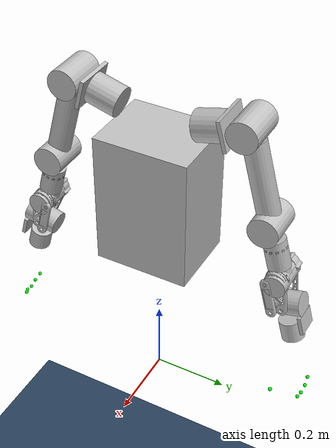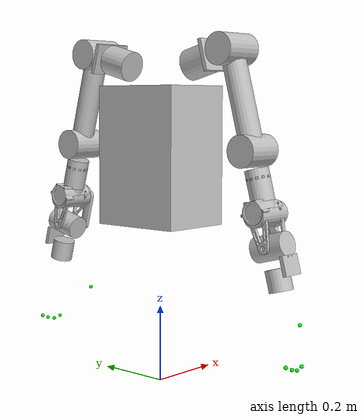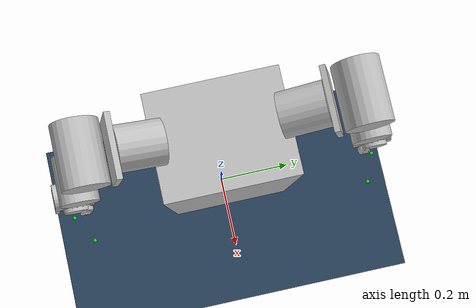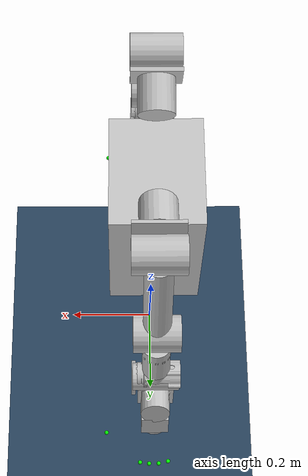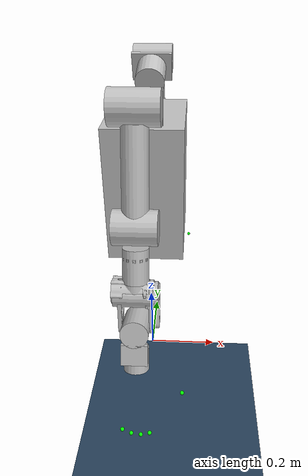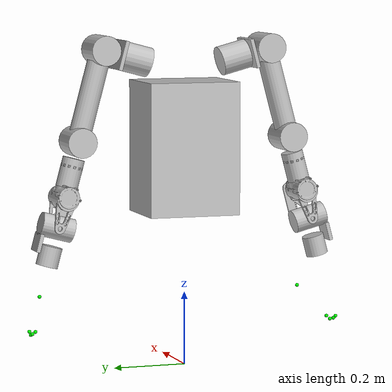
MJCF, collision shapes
<mujoco model="dual_arm_description">
  <compiler angle="radian" meshdir="meshes/"/>
  <default>
<joint damping="0.1" frictionloss="0.02" armature="0.01"/>
</default>
  <asset>
    <texture type="skybox" builtin="gradient" rgb1=".3 .5 .7" rgb2="0 0 0" width="32" height="512"/>
    <texture name="body" type="cube" builtin="flat" mark="cross" width="128" height="128" rgb1="0.8 0.6 0.4" rgb2="0.8 0.6 0.4" markrgb="1 1 1" random="0.01"/>
    <material name="body" texture="body" texuniform="true" rgba="0.8 0.6 .4 1"/>
    <texture name="grid" type="2d" builtin="checker" width="512" height="512" rgb1=".1 .2 .3" rgb2=".2 .3 .4"/>
    <material name="grid" texture="grid" texrepeat="1 1" texuniform="true" reflectance=".2"/>
    <mesh name="waist_link2" file="waist_link2.STL"/>
    <mesh name="pelvis" file="pelvis.STL"/>
    <mesh name="l_link0" file="l_link0.STL"/>
    <mesh name="l_link1" file="l_link1.STL"/>
    <mesh name="l_link2" file="l_link2.STL"/>
    <mesh name="l_link3" file="l_link3.STL"/>
    <mesh name="l_link4" file="l_link4.STL"/>
    <mesh name="l_link5" file="l_link5.STL"/>
    <mesh name="l_link6" file="l_link6.STL"/>
    <mesh name="l_link7" file="l_link7.STL"/>
    <mesh name="r_link0" file="r_link0.STL"/>
    <mesh name="r_link1" file="r_link1.STL"/>
    <mesh name="r_link2" file="r_link2.STL"/>
    <mesh name="r_link3" file="r_link3.STL"/>
    <mesh name="r_link4" file="r_link4.STL"/>
    <mesh name="r_link5" file="r_link5.STL"/>
    <mesh name="r_link6" file="r_link6.STL"/>
    <mesh name="r_link7" file="r_link7.STL"/>
    <mesh name="L_hand_base_link" file="L_hand_base_link.STL"/>
    <mesh name="Link11_L" file="Link11_L.STL"/>
    <mesh name="Link12_L" file="Link12_L.STL"/>
    <mesh name="Link13_L" file="Link13_L.STL"/>
    <mesh name="Link14_L" file="Link14_L.STL"/>
    <mesh name="Link15_L" file="Link15_L.STL"/>
    <mesh name="Link16_L" file="Link16_L.STL"/>
    <mesh name="Link17_L" file="Link17_L.STL"/>
    <mesh name="Link18_L" file="Link18_L.STL"/>
    <mesh name="Link19_L" file="Link19_L.STL"/>
    <mesh name="Link20_L" file="Link20_L.STL"/>
    <mesh name="Link21_L" file="Link21_L.STL"/>
    <mesh name="Link22_L" file="Link22_L.STL"/>
    <mesh name="R_hand_base_link" file="R_hand_base_link.STL"/>
    <mesh name="Link11_R" file="Link11_R.STL"/>
    <mesh name="Link12_R" file="Link12_R.STL"/>
    <mesh name="Link13_R" file="Link13_R.STL"/>
    <mesh name="Link14_R" file="Link14_R.STL"/>
    <mesh name="Link15_R" file="Link15_R.STL"/>
    <mesh name="Link16_R" file="Link16_R.STL"/>
    <mesh name="Link17_R" file="Link17_R.STL"/>
    <mesh name="Link18_R" file="Link18_R.STL"/>
    <mesh name="Link19_R" file="Link19_R.STL"/>
    <mesh name="Link20_R" file="Link20_R.STL"/>
    <mesh name="Link21_R" file="Link21_R.STL"/>
    <mesh name="Link22_R" file="Link22_R.STL"/>
  </asset>
  <worldbody>
    <light directional="true" diffuse=".4 .4 .4" specular="0.1 0.1 0.1" pos="0 0 5.0" dir="0 0 -1" castshadow="false"/>
    <light directional="true" diffuse=".6 .6 .6" specular="0.2 0.2 0.2" pos="0 0 4" dir="0 0 -1"/>
    <geom name="floor" size="0 0 .05" type="plane" material="grid" condim="3" pos="0 0 -0.64"/>
    <geom pos="0 0 0.494" type="mesh" contype="0" conaffinity="0" group="1" density="0" rgba="0.752941 0.752941 0.752941 1" mesh="pelvis"/>
    <body name="waist_Z_link" pos="0 0 0.4185">
      <inertial pos="-0.018779 -0.000457 0.246485" quat="0.999923 -0.0020141 -0.0119165 -0.00266278" mass="1" diaginertia="0.243009 0.228997 0.0758896"/>
      <joint name="waist_Z_joint" pos="0 0 0" axis="0 0 1" type="slide" limited="true" range="-0.15 0" damping="1" frictionloss="1"/>
      <geom size="0.05 0.005" type="cylinder" contype="0" conaffinity="0" group="1" density="0" rgba="0 0 1 1"/>
      <body name="waist_roll_link">
        <inertial pos="-0.018779 -0.000457 0.246485" quat="0.999923 -0.0020141 -0.0119165 -0.00266278" mass="0.0002" diaginertia="0.486018 0.457994 0.151779"/>
        <joint name="waist_roll_joint" pos="0 0 0" axis="1 0 0" limited="true" range="-0.25 0.25" damping="0.1" frictionloss="0.1"/>
        <geom size="0.05 0.005" type="cylinder" contype="0" conaffinity="0" group="1" density="0" rgba="0 1 0 1"/>
        <geom size="0.05 0.005" type="cylinder" contype="0" conaffinity="0" group="1" density="0" rgba="1 0 0 1"/>
        <body name="waist_link">
          <inertial pos="-0.0138181 -0.00161712 0.281568" quat="0.999936 0.0106773 0.00357206 -0.00106707" mass="17.7464" diaginertia="0.469112 0.405083 0.144421"/>
          <joint name="waist_yaw_joint" pos="0 0 0" axis="0 0 1" limited="true" range="-1 1" damping="0.5" frictionloss="0.5"/>
          <geom type="mesh" contype="0" conaffinity="0" group="1" density="0" rgba="0.752941 0.752941 0.752941 1" mesh="waist_link2"/>
          <geom size="0.1 0.125 0.18" pos="0 0 0.18" type="box" rgba="0.752941 0.752941 0.752941 1"/>
          <geom pos="0 0.15911 0.42582" quat="0.561136 -0.430264 0.430264 0.561135" type="mesh" contype="0" conaffinity="0" group="1" density="0" rgba="0.752941 0.752941 0.752941 1" mesh="l_link0"/>
          <geom size="0.04 0.04" pos="-5.17541e-10 0.139795 0.42063" quat="0.561136 -0.430264 0.430264 0.561135" type="cylinder" rgba="0.752941 0.752941 0.752941 1"/>
          <geom pos="0 -0.15911 0.42582" quat="0.561136 0.430264 0.430264 -0.561135" type="mesh" contype="0" conaffinity="0" group="1" density="0" rgba="0.752941 0.752941 0.752941 1" mesh="r_link0"/>
          <geom size="0.04 0.04" pos="-5.17541e-10 -0.139795 0.42063" quat="0.561136 0.430264 0.430264 -0.561135" type="cylinder" rgba="0.752941 0.752941 0.752941 1"/>
          <body name="left_link1" pos="1.98477e-09 0.233183 0.445723" quat="0.561136 -0.430264 0.430264 0.561135">
            <inertial pos="0 0.000725 -0.029524" quat="0.637041 0.77083 0 0" mass="0.222" diaginertia="0.000545 0.000513631 0.000270369"/>
            <joint name="left_joint1" pos="0 0 0" axis="0 0 1" limited="true" range="-3.14159 0.785398"/>
            <geom type="mesh" contype="0" conaffinity="0" group="1" density="0" rgba="0.752941 0.752941 0.752941 1" mesh="l_link1"/>
            <geom size="0.04 0.055 0.005" pos="0 0 -0.05" type="box" rgba="0.752941 0.752941 0.752941 1"/>
            <body name="left_link2" quat="0.5 0.5 -0.5 0.5">
              <inertial pos="0 -0.000473 0.006864" quat="0.999978 -0.00657738 0 0" mass="1.226" diaginertia="0.001198 0.00118004 0.000951961"/>
              <joint name="left_joint2" pos="0 0 0" axis="0 0 1" limited="true" range="-0.174 1.74533"/>
              <geom type="mesh" contype="0" conaffinity="0" group="1" density="0" rgba="0.75294 0.75294 0.75294 1" mesh="l_link2"/>
              <geom size="0.04 0.055" type="cylinder" rgba="0.75294 0.75294 0.75294 1"/>
              <body name="left_link3" pos="0 -0.253 0" quat="0.707107 0.707107 0 0">
                <inertial pos="0.000247 0.003673 -0.081504" quat="0.999747 -0.0215591 0.000754078 0.00640175" mass="1.824" diaginertia="0.0142071 0.0139976 0.00129937"/>
                <joint name="left_joint3" pos="0 0 0" axis="0 0 1" limited="true" range="-2.26893 2.26893"/>
                <geom type="mesh" contype="0" conaffinity="0" group="1" density="0" rgba="0.752941 0.752941 0.752941 1" mesh="l_link3"/>
                <geom size="0.03 0.11" pos="0 0 -0.11" type="cylinder" rgba="0.752941 0.752941 0.752941 1"/>
                <body name="left_link4" quat="0.707107 -0.707107 0 0">
                  <inertial pos="0.002765 -0.020714 0.006089" quat="0.997296 -0.0356336 -0.00751368 0.0638332" mass="0.123" diaginertia="0.000241537 0.000210924 0.000124539"/>
                  <joint name="left_joint4" pos="0 0 0" axis="0 0 1" limited="true" range="-2.26893 0"/>
                  <geom type="mesh" contype="0" conaffinity="0" group="1" density="0" rgba="0.75294 0.75294 0.75294 1" mesh="l_link4"/>
                  <geom size="0.04 0.05" type="cylinder" rgba="0.75294 0.75294 0.75294 1"/>
                  <body name="left_link5" pos="0 -0.2355 0" quat="0.707107 0.707107 0 0">
                    <inertial pos="0.000563 0.005092 -0.108798" quat="0.993172 -0.074755 0.0157112 0.088174" mass="1.01" diaginertia="0.00229232 0.00210921 0.000593467"/>
                    <joint name="left_joint5" pos="0 0 0" axis="0 0 1" limited="true" range="-2.26893 2.26893"/>
                    <geom type="mesh" contype="0" conaffinity="0" group="1" density="0" rgba="0.752941 0.752941 0.752941 1" mesh="l_link5"/>
                    <geom type="mesh" rgba="0.752941 0.752941 0.752941 1" mesh="l_link5"/>
                    <geom size="0.03 0.04" pos="0 0 -0.15" type="cylinder" rgba="0.752941 0.752941 0.752941 1"/>
                    <geom size="0.03 0.05" pos="0 0 -0.08" quat="0.707107 0.707107 0 0" type="cylinder" rgba="0.752941 0.752941 0.752941 1"/>
                    <body name="left_link6" quat="0.5 -0.5 -0.5 -0.5">
                      <inertial pos="0 -0.005048 0.000947" quat="0.609644 0.792675 0 0" mass="0.487" diaginertia="0.00027 0.000253187 0.000204813"/>
                      <joint name="left_joint6" pos="0 0 0" axis="0 0 1" limited="true" range="-0.645772 0.645772"/>
                      <geom type="mesh" contype="0" conaffinity="0" group="1" density="0" rgba="0.75294 0.75294 0.75294 1" mesh="l_link6"/>
                      <geom size="0.032 0.045" quat="0.707107 0.707107 0 0" type="cylinder" rgba="0.75294 0.75294 0.75294 1"/>
                      <body name="left_link7" quat="0.5 -0.5 0.5 0.5">
                        <inertial pos="-0.00169734 -0.113905 -0.010146" quat="0.483848 0.405133 -0.515405 0.579755" mass="0.419797" diaginertia="0.00196097 0.00183188 0.000345827"/>
                        <joint name="left_joint7" pos="0 0 0" axis="0 0 1" limited="true" range="-0.645772 0.645772"/>
                        <geom type="mesh" contype="0" conaffinity="0" group="1" density="0" rgba="0.75294 0.75294 0.75294 1" mesh="l_link7"/>
                        <geom size="0.03 0.025 0.005" pos="0 -0.05 0.04" type="box" rgba="0.75294 0.75294 0.75294 1"/>
                        <geom size="0.03 0.0275" pos="0 -0.08 0" quat="0.707107 0.707107 0 0" type="cylinder" rgba="0.75294 0.75294 0.75294 1"/>
                        <geom pos="0 -0.084 0" quat="0.707107 0 -0.707107 0" type="mesh" contype="0" conaffinity="0" group="1" density="0" rgba="0.1 0.1 0.1 1" mesh="L_hand_base_link"/>
                        <geom pos="-0.02045 -0.1531 -0.01696" quat="-1.29867e-06 -1.29868e-06 -0.707105 0.707108" type="mesh" contype="0" conaffinity="0" group="1" density="0" rgba="0.1 0.1 0.1 1" mesh="Link11_L"/>
                        <geom pos="-0.0304367 -0.1442 -0.0267843" quat="-0.0845956 3.1073e-07 -0.996415 0" type="mesh" contype="0" conaffinity="0" group="1" density="0" rgba="0.1 0.1 0.1 1" mesh="Link12_L"/>
                        <geom pos="-0.0740107 -0.178753 -0.0334252" quat="-0.0845956 3.1073e-07 -0.996415 0" type="mesh" contype="0" conaffinity="0" group="1" density="0" rgba="0.1 0.1 0.1 1" mesh="Link13_L"/>
                        <geom pos="-0.0941712 -0.188909 -0.0356559" quat="-0.0845956 3.1073e-07 -0.996415 0" type="mesh" contype="0" conaffinity="0" group="1" density="0" rgba="0.1 0.1 0.1 1" mesh="Link14_L"/>
                        <geom size="0.005" pos="-0.109631 -0.201909 -0.0342419" quat="-0.0845956 3.1073e-07 -0.996415 0" contype="0" conaffinity="0" group="1" density="0" rgba="0 1 0 1"/>
                        <geom pos="-0.032268 -0.22053 0.00028533" quat="0.706999 -0.0123409 -0.706999 -0.0123409" type="mesh" contype="0" conaffinity="0" group="1" density="0" rgba="0.1 0.1 0.1 1" mesh="Link15_L"/>
                        <geom pos="-0.0323868 -0.252586 -0.00213757" quat="0.706999 -0.0123409 -0.706999 -0.0123409" type="mesh" contype="0" conaffinity="0" group="1" density="0" rgba="0.1 0.1 0.1 1" mesh="Link16_L"/>
                        <geom size="0.005" pos="-0.0297853 -0.292702 -0.00713757" quat="0.706999 -0.0123409 -0.706999 -0.0123409" contype="0" conaffinity="0" group="1" density="0" rgba="0 1 0 1"/>
                        <geom pos="-0.01295 -0.2211 0.00028533" quat="0.707107 0 -0.707107 0" type="mesh" contype="0" conaffinity="0" group="1" density="0" rgba="0.1 0.1 0.1 1" mesh="Link17_L"/>
                        <geom pos="-0.01195 -0.253141 -0.00213757" quat="0.707107 0 -0.707107 0" type="mesh" contype="0" conaffinity="0" group="1" density="0" rgba="0.1 0.1 0.1 1" mesh="Link18_L"/>
                        <geom size="0.005" pos="-0.00795 -0.298141 -0.00713757" quat="0.707107 0 -0.707107 0" contype="0" conaffinity="0" group="1" density="0" rgba="0 1 0 1"/>
                        <geom pos="0.0062872 -0.22091 0.00028533" quat="0.706864 0.0185099 -0.706864 0.0185099" type="mesh" contype="0" conaffinity="0" group="1" density="0" rgba="0.1 0.1 0.1 1" mesh="Link19_L"/>
                        <geom pos="0.00896273 -0.252855 -0.00213757" quat="0.706864 0.0185099 -0.706864 0.0185099" type="mesh" contype="0" conaffinity="0" group="1" density="0" rgba="0.1 0.1 0.1 1" mesh="Link20_L"/>
                        <geom size="0.005" pos="0.0150507 -0.292591 -0.00413757" quat="0.706864 0.0185099 -0.706864 0.0185099" contype="0" conaffinity="0" group="1" density="0" rgba="0 1 0 1"/>
                        <geom pos="0.025488 -0.21971 0.00028533" quat="0.706138 0.0370072 -0.706138 0.0370072" type="mesh" contype="0" conaffinity="0" group="1" density="0" rgba="0.1 0.1 0.1 1" mesh="Link21_L"/>
                        <geom pos="0.0298317 -0.251471 -0.00213757" quat="0.706138 0.0370072 -0.706138 0.0370072" type="mesh" contype="0" conaffinity="0" group="1" density="0" rgba="0.1 0.1 0.1 1" mesh="Link22_L"/>
                        <geom size="0.005" pos="0.0371547 -0.282878 -0.00413757" quat="0.706138 0.0370072 -0.706138 0.0370072" contype="0" conaffinity="0" group="1" density="0" rgba="0 1 0 1"/>
                      </body>
                    </body>
                  </body>
                </body>
              </body>
            </body>
          </body>
          <body name="right_link1" pos="1.98477e-09 -0.233183 0.445723" quat="0.561136 0.430264 0.430264 -0.561135">
            <inertial pos="0 -0.000725 -0.029524" quat="0.77083 0.637041 0 0" mass="0.222" diaginertia="0.000545 0.000513631 0.000270369"/>
            <joint name="right_joint1" pos="0 0 0" axis="0 0 1" limited="true" range="-0.785398 3.14159"/>
            <geom type="mesh" contype="0" conaffinity="0" group="1" density="0" rgba="0.752941 0.752941 0.752941 1" mesh="r_link1"/>
            <geom size="0.04 0.055 0.005" pos="0 0 -0.05" type="box" rgba="0.752941 0.752941 0.752941 1"/>
            <body name="right_link2" quat="0.5 -0.5 -0.5 -0.5">
              <inertial pos="0 0.000473 0.006864" quat="0.999978 0.00657738 0 0" mass="1.226" diaginertia="0.001198 0.00118004 0.000951961"/>
              <joint name="right_joint2" pos="0 0 0" axis="0 0 1" limited="true" range="-1.74533 0.174"/>
              <geom type="mesh" contype="0" conaffinity="0" group="1" density="0" rgba="0.75294 0.75294 0.75294 1" mesh="r_link2"/>
              <geom size="0.04 0.055" type="cylinder" rgba="0.75294 0.75294 0.75294 1"/>
              <body name="right_link3" pos="0 0.253 0" quat="0.707107 -0.707107 0 0">
                <inertial pos="0.000247 -0.003673 -0.081504" quat="0.999747 0.0215591 0.000754078 -0.00640175" mass="1.824" diaginertia="0.0142071 0.0139976 0.00129937"/>
                <joint name="right_joint3" pos="0 0 0" axis="0 0 1" limited="true" range="-2.26893 2.26893"/>
                <geom type="mesh" contype="0" conaffinity="0" group="1" density="0" rgba="0.752941 0.752941 0.752941 1" mesh="r_link3"/>
                <geom size="0.03 0.11" pos="0 0 -0.11" type="cylinder" rgba="0.752941 0.752941 0.752941 1"/>
                <body name="right_link4" quat="0.707107 0.707107 0 0">
                  <inertial pos="0.002765 0.020714 0.006089" quat="0.997296 0.0356336 -0.00751368 -0.0638332" mass="0.123" diaginertia="0.000241537 0.000210924 0.000124539"/>
                  <joint name="right_joint4" pos="0 0 0" axis="0 0 1" limited="true" range="0 2.26893"/>
                  <geom type="mesh" contype="0" conaffinity="0" group="1" density="0" rgba="0.75294 0.75294 0.75294 1" mesh="r_link4"/>
                  <geom size="0.04 0.05" type="cylinder" rgba="0.75294 0.75294 0.75294 1"/>
                  <body name="right_link5" pos="0 0.2355 0" quat="0.707107 -0.707107 0 0">
                    <inertial pos="0.000563 -0.005092 -0.108798" quat="0.995124 0.0767573 0.00673248 0.0615803" mass="1.01" diaginertia="0.0022895 0.00211237 0.000593133"/>
                    <joint name="right_joint5" pos="0 0 0" axis="0 0 1" limited="true" range="-2.26893 2.26893"/>
                    <geom type="mesh" contype="0" conaffinity="0" group="1" density="0" rgba="0.752941 0.752941 0.752941 1" mesh="r_link5"/>
                    <geom type="mesh" rgba="0.752941 0.752941 0.752941 1" mesh="r_link5"/>
                    <geom size="0.03 0.04" pos="0 0 -0.15" type="cylinder" rgba="0.752941 0.752941 0.752941 1"/>
                    <geom size="0.03 0.05" pos="0 0 -0.08" quat="0.707107 0.707107 0 0" type="cylinder" rgba="0.752941 0.752941 0.752941 1"/>
                    <body name="right_link6" quat="0.5 0.5 -0.5 0.5">
                      <inertial pos="0 0.005048 0.000947" quat="0.792675 0.609644 0 0" mass="0.487" diaginertia="0.00027 0.000253187 0.000204813"/>
                      <joint name="right_joint6" pos="0 0 0" axis="0 0 1" limited="true" range="-0.645772 0.645772"/>
                      <geom type="mesh" contype="0" conaffinity="0" group="1" density="0" rgba="0.75294 0.75294 0.75294 1" mesh="r_link6"/>
                      <geom size="0.032 0.045" quat="0.707107 0.707107 0 0" type="cylinder" rgba="0.75294 0.75294 0.75294 1"/>
                      <body name="right_link7" quat="0.5 0.5 -0.5 0.5">
                        <inertial pos="0.00162605 -0.11389 -0.0103434" quat="0.592772 0.527278 -0.391451 0.466225" mass="0.41979" diaginertia="0.00195832 0.00183087 0.000347841"/>
                        <joint name="right_joint7" pos="0 0 0" axis="0 0 1" limited="true" range="-0.645772 0.645772"/>
                        <geom type="mesh" contype="0" conaffinity="0" group="1" density="0" rgba="0.75294 0.75294 0.75294 1" mesh="r_link7"/>
                        <geom size="0.03 0.025 0.005" pos="0 -0.05 0.04" type="box" rgba="0.75294 0.75294 0.75294 1"/>
                        <geom size="0.03 0.0275" pos="0 -0.08 0" quat="0.707107 0.707107 0 0" type="cylinder" rgba="0.75294 0.75294 0.75294 1"/>
                        <geom pos="0 -0.084 0" quat="0.707107 0 -0.707107 0" type="mesh" contype="0" conaffinity="0" group="1" density="0" rgba="0.1 0.1 0.1 1" mesh="R_hand_base_link"/>
                        <geom pos="0.02045 -0.1531 -0.01696" quat="-1.29867e-06 -1.29868e-06 -0.707105 0.707108" type="mesh" contype="0" conaffinity="0" group="1" density="0" rgba="0.1 0.1 0.1 1" mesh="Link11_R"/>
                        <geom pos="0.0292599 -0.14385 -0.027852" quat="0 -0.990013 5.17831e-07 0.140973" type="mesh" contype="0" conaffinity="0" group="1" density="0" rgba="0.1 0.1 0.1 1" mesh="Link12_R"/>
                        <geom pos="0.0718016 -0.178403 -0.0393851" quat="0 -0.990013 5.17831e-07 0.140973" type="mesh" contype="0" conaffinity="0" group="1" density="0" rgba="0.1 0.1 0.1 1" mesh="Link13_R"/>
                        <geom pos="0.0915797 -0.188559 -0.0438846" quat="0 -0.990013 5.17831e-07 0.140973" type="mesh" contype="0" conaffinity="0" group="1" density="0" rgba="0.1 0.1 0.1 1" mesh="Link14_R"/>
                        <geom size="0.005" pos="0.1071 -0.201559 -0.0442306" quat="0 -0.990013 5.17831e-07 0.140973" contype="0" conaffinity="0" group="1" density="0" rgba="0 1 0 1"/>
                        <geom pos="0.032268 -0.22053 0.00028533" quat="0.0123358 -0.706999 -0.0123358 -0.706999" type="mesh" contype="0" conaffinity="0" group="1" density="0" rgba="0.1 0.1 0.1 1" mesh="Link15_R"/>
                        <geom pos="0.0323859 -0.252571 -0.00232847" quat="0.0123358 -0.706999 -0.0123358 -0.706999" type="mesh" contype="0" conaffinity="0" group="1" density="0" rgba="0.1 0.1 0.1 1" mesh="Link16_R"/>
                        <geom size="0.005" pos="0.0297837 -0.292687 -0.00732847" quat="0.0123358 -0.706999 -0.0123358 -0.706999" contype="0" conaffinity="0" group="1" density="0" rgba="0 1 0 1"/>
                        <geom pos="0.01295 -0.2211 0.00028533" quat="-2.59735e-06 -0.707107 2.59735e-06 -0.707107" type="mesh" contype="0" conaffinity="0" group="1" density="0" rgba="0.1 0.1 0.1 1" mesh="Link17_R"/>
                        <geom pos="0.0119498 -0.253141 -0.00213757" quat="-2.59735e-06 -0.707107 2.59735e-06 -0.707107" type="mesh" contype="0" conaffinity="0" group="1" density="0" rgba="0.1 0.1 0.1 1" mesh="Link18_R"/>
                        <geom size="0.005" pos="0.00794943 -0.298141 -0.00713757" quat="-2.59735e-06 -0.707107 2.59735e-06 -0.707107" contype="0" conaffinity="0" group="1" density="0" rgba="0 1 0 1"/>
                        <geom pos="-0.0062872 -0.22091 0.00028533" quat="0.0185215 0.706864 -0.0185215 0.706864" type="mesh" contype="0" conaffinity="0" group="1" density="0" rgba="0.1 0.1 0.1 1" mesh="Link19_R"/>
                        <geom pos="-0.00896377 -0.252855 -0.00213757" quat="0.0185215 0.706864 -0.0185215 0.706864" type="mesh" contype="0" conaffinity="0" group="1" density="0" rgba="0.1 0.1 0.1 1" mesh="Link20_R"/>
                        <geom size="0.005" pos="-0.015053 -0.29259 -0.00413757" quat="0.0185215 0.706864 -0.0185215 0.706864" contype="0" conaffinity="0" group="1" density="0" rgba="0 1 0 1"/>
                        <geom pos="-0.025488 -0.21971 0.00028533" quat="0.0369975 0.706138 -0.0369975 0.706138" type="mesh" contype="0" conaffinity="0" group="1" density="0" rgba="0.1 0.1 0.1 1" mesh="Link21_R"/>
                        <geom pos="-0.0298309 -0.251471 -0.00213757" quat="0.0369975 0.706138 -0.0369975 0.706138" type="mesh" contype="0" conaffinity="0" group="1" density="0" rgba="0.1 0.1 0.1 1" mesh="Link22_R"/>
                        <geom size="0.005" pos="-0.037153 -0.282878 -0.00413757" quat="0.0369975 0.706138 -0.0369975 0.706138" contype="0" conaffinity="0" group="1" density="0" rgba="0 1 0 1"/>
                      </body>
                    </body>
                  </body>
                </body>
              </body>
            </body>
          </body>
        </body>
      </body>
    </body>
  </worldbody>
    <actuator>
    <position name="waist_Z_joint" joint="waist_Z_joint" kp="20000" kv="100"/>
    <position name="waist_roll_joint" joint="waist_roll_joint" kp="1200" kv="10"  />
    <position name="waist_yaw_joint" joint="waist_yaw_joint" kp="1200" kv="10" />
    <position name="left_joint1" joint="left_joint1" kp="1200" kv="10" />
    <position name="left_joint2" joint="left_joint2" kp="1200" kv="10" />
    <position name="left_joint3" joint="left_joint3" kp="1200" kv="10" />
    <position name="left_joint4" joint="left_joint4" kp="1200" kv="10" />
    <position name="left_joint5" joint="left_joint5" kp="1200" kv="10" />
    <position name="left_joint6" joint="left_joint6" kp="1200" kv="10" />
    <position name="left_joint7" joint="left_joint7" kp="1200" kv="10" />
    <position name="right_joint1" joint="right_joint1" kp="1200" kv="10" />
    <position name="right_joint2" joint="right_joint2" kp="1200" kv="10" />
    <position name="right_joint3" joint="right_joint3" kp="1200" kv="10" />
    <position name="right_joint4" joint="right_joint4" kp="1200" kv="10" />
    <position name="right_joint5" joint="right_joint5" kp="1200" kv="10" />
    <position name="right_joint6" joint="right_joint6" kp="1200" kv="10" />
    <position name="right_joint7" joint="right_joint7" kp="1200" kv="10" />
  </actuator>
  <!-- sensors for position -->
  <sensor>
    <jointpos joint="waist_Z_joint" />
    <jointpos joint="waist_roll_joint" />
    <jointpos joint="waist_yaw_joint" />
    <jointpos joint="left_joint1" />
    <jointpos joint="left_joint2" />
    <jointpos joint="left_joint3" />
    <jointpos joint="left_joint4" />
    <jointpos joint="left_joint5" />
    <jointpos joint="left_joint6" />
    <jointpos joint="left_joint7" />
    <jointpos joint="right_joint1" />
    <jointpos joint="right_joint2" />
    <jointpos joint="right_joint3" />
    <jointpos joint="right_joint4" />
    <jointpos joint="right_joint5" />
    <jointpos joint="right_joint6" />
    <jointpos joint="right_joint7" />
  </sensor>

  <!-- sensors for velocity -->
  <sensor>
    <jointvel joint="waist_Z_joint" />
    <jointvel joint="waist_roll_joint" />
    <jointvel joint="waist_yaw_joint" />
    <jointvel joint="left_joint1" />
    <jointvel joint="left_joint2" />
    <jointvel joint="left_joint3" />
    <jointvel joint="left_joint4" />
    <jointvel joint="left_joint5" />
    <jointvel joint="left_joint6" />
    <jointvel joint="left_joint7" />
    <jointvel joint="right_joint1" />
    <jointvel joint="right_joint2" />
    <jointvel joint="right_joint3" />
    <jointvel joint="right_joint4" />
    <jointvel joint="right_joint5" />
    <jointvel joint="right_joint6" />
    <jointvel joint="right_joint7" />
  </sensor>
</mujoco>
